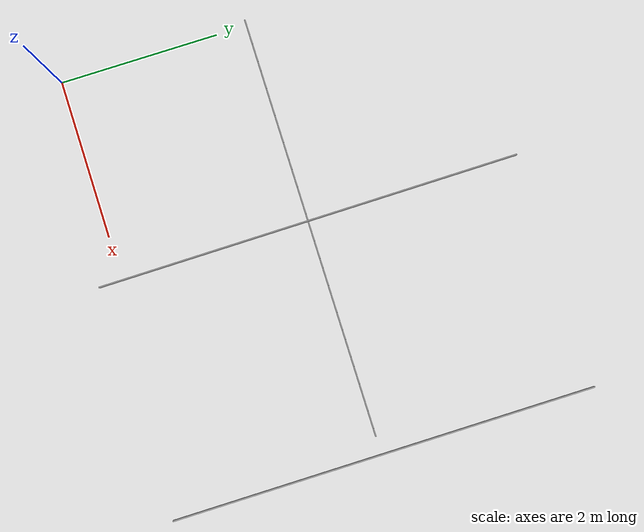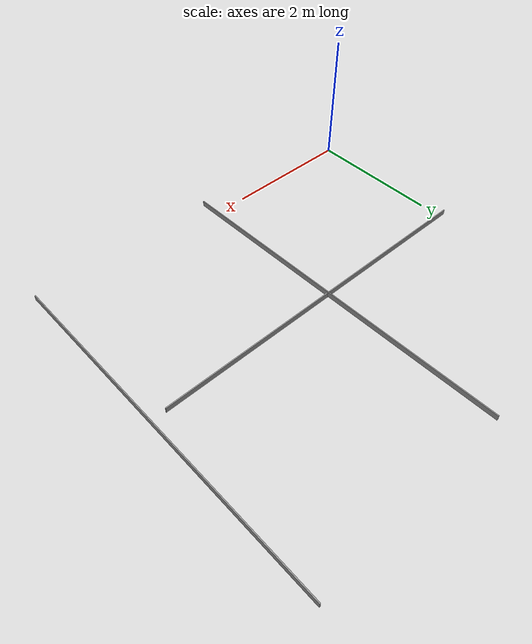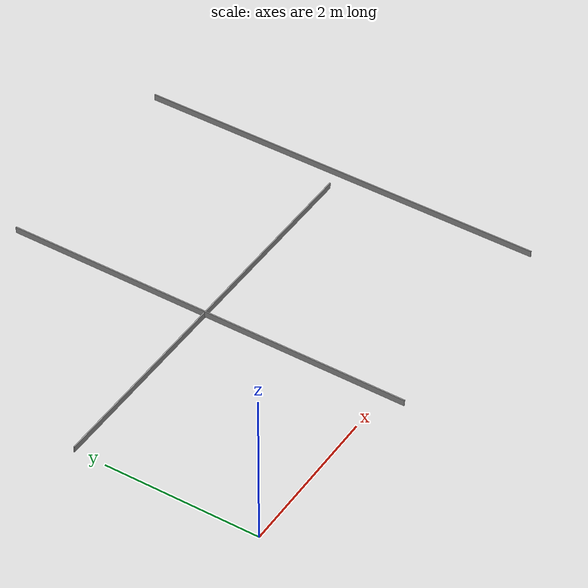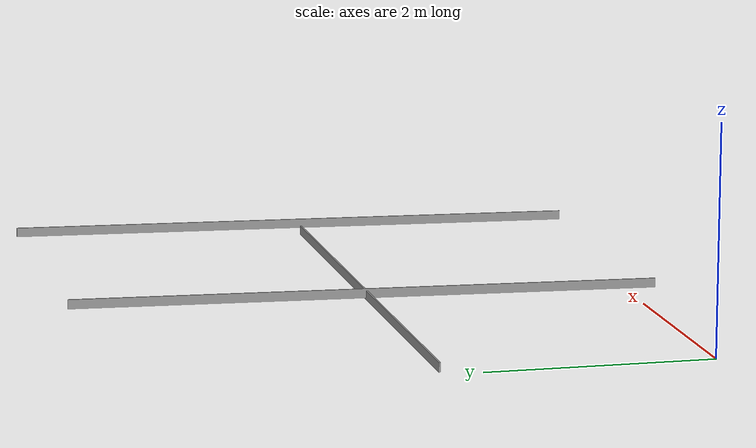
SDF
<sdf version="1.7">
 <world name="default">
  <model name="line">
   <link name="link">
    <inertial>
     <mass>1</mass>
     <inertia>
      <ixx>0.166667</ixx>
      <ixy>0</ixy>
      <ixz>0</ixz>
      <iyy>0.166667</iyy>
      <iyz>0</iyz>
      <izz>0.166667</izz>
     </inertia>
    </inertial>
    <visual name="visual">
     <geometry><box><size>5.32063 0.014816 0.083163</size></box></geometry>
     <material>
      <script><name>Gazebo/Grey</name><uri>file://media/materials/scripts/gazebo.material</uri></script>
      <shader type="pixel"><normal_map>__default__</normal_map></shader>
      <ambient>0.3 0.3 0.3 1</ambient>
      <diffuse>0.7 0.7 0.7 1</diffuse>
      <specular>0.01 0.01 0.01 1</specular>
      <emissive>0 0 0 1</emissive>
     </material>
    </visual>
    <collision name="collision">
     <geometry><box><size>5.32063 0.014816 0.083163</size></box></geometry>
     <surface>
      <friction>
       <ode><mu>1</mu><mu2>1</mu2><fdir1>0 0 0</fdir1><slip1>0</slip1><slip2>0</slip2></ode>
       <torsional>
        <coefficient>1</coefficient>
        <patch_radius>0</patch_radius>
        <surface_radius>0</surface_radius>
        <use_patch_radius>1</use_patch_radius>
        <ode><slip>0</slip></ode>
       </torsional>
      </friction>
      <bounce><restitution_coefficient>0</restitution_coefficient><threshold>1e+06</threshold></bounce>
      <contact>
       <collide_without_contact>0</collide_without_contact>
       <collide_without_contact_bitmask>1</collide_without_contact_bitmask>
       <collide_bitmask>1</collide_bitmask>
       <ode>
        <soft_cfm>0</soft_cfm>
        <soft_erp>0.2</soft_erp>
        <kp>1e+13</kp>
        <kd>1</kd>
        <max_vel>0.01</max_vel>
        <min_depth>0</min_depth>
       </ode>
       <bullet>
        <split_impulse>1</split_impulse>
        <split_impulse_penetration_threshold>-0.01</split_impulse_penetration_threshold>
        <soft_cfm>0</soft_cfm>
        <soft_erp>0.2</soft_erp>
        <kp>1e+13</kp>
        <kd>1</kd>
       </bullet>
      </contact>
     </surface>
    </collision>
   </link>
   <static>0</static>
   <pose>2.61456 2.37977 0.080832 0.017039 -9.6e-05 -3.5e-05</pose>
  </model>
  <model name="line_clone_clone">
   <link name="link">
    <inertial>
     <mass>1</mass>
     <inertia>
      <ixx>0.166667</ixx>
      <ixy>0</ixy>
      <ixz>0</ixz>
      <iyy>0.166667</iyy>
      <iyz>0</iyz>
      <izz>0.166667</izz>
     </inertia>
    </inertial>
    <visual name="visual">
     <geometry><box><size>5.32063 0.014816 0.083163</size></box></geometry>
     <material>
      <script><name>Gazebo/Grey</name><uri>file://media/materials/scripts/gazebo.material</uri></script>
      <shader type="pixel"><normal_map>__default__</normal_map></shader>
      <ambient>0.3 0.3 0.3 1</ambient>
      <diffuse>0.7 0.7 0.7 1</diffuse>
      <specular>0.01 0.01 0.01 1</specular>
      <emissive>0 0 0 1</emissive>
     </material>
    </visual>
    <collision name="collision">
     <geometry><box><size>5.32063 0.014816 0.083163</size></box></geometry>
     <surface>
      <friction>
       <ode><mu>1</mu><mu2>1</mu2><fdir1>0 0 0</fdir1><slip1>0</slip1><slip2>0</slip2></ode>
       <torsional>
        <coefficient>1</coefficient>
        <patch_radius>0</patch_radius>
        <surface_radius>0</surface_radius>
        <use_patch_radius>1</use_patch_radius>
        <ode><slip>0</slip></ode>
       </torsional>
      </friction>
      <bounce><restitution_coefficient>0</restitution_coefficient><threshold>1e+06</threshold></bounce>
      <contact>
       <collide_without_contact>0</collide_without_contact>
       <collide_without_contact_bitmask>1</collide_without_contact_bitmask>
       <collide_bitmask>1</collide_bitmask>
       <ode>
        <soft_cfm>0</soft_cfm>
        <soft_erp>0.2</soft_erp>
        <kp>1e+13</kp>
        <kd>1</kd>
        <max_vel>0.01</max_vel>
        <min_depth>0</min_depth>
       </ode>
       <bullet>
        <split_impulse>1</split_impulse>
        <split_impulse_penetration_threshold>-0.01</split_impulse_penetration_threshold>
        <soft_cfm>0</soft_cfm>
        <soft_erp>0.2</soft_erp>
        <kp>1e+13</kp>
        <kd>1</kd>
       </bullet>
      </contact>
     </surface>
    </collision>
   </link>
   <static>0</static>
   <pose>5.50275 2.40964 0.097705 0.000158 0.017039 -1.5672</pose>
  </model>
  <model name="line_clone_clone_clone">
   <link name="link">
    <inertial>
     <mass>1</mass>
     <inertia>
      <ixx>0.166667</ixx>
      <ixy>0</ixy>
      <ixz>0</ixz>
      <iyy>0.166667</iyy>
      <iyz>0</iyz>
      <izz>0.166667</izz>
     </inertia>
    </inertial>
    <visual name="visual">
     <geometry><box><size>5.32063 0.014816 0.083163</size></box></geometry>
     <material>
      <script><name>Gazebo/Grey</name><uri>file://media/materials/scripts/gazebo.material</uri></script>
      <shader type="pixel"><normal_map>__default__</normal_map></shader>
      <ambient>0.3 0.3 0.3 1</ambient>
      <diffuse>0.7 0.7 0.7 1</diffuse>
      <specular>0.01 0.01 0.01 1</specular>
      <emissive>0 0 0 1</emissive>
     </material>
    </visual>
    <collision name="collision">
     <geometry><box><size>5.32063 0.014816 0.083163</size></box></geometry>
     <surface>
      <friction>
       <ode><mu>1</mu><mu2>1</mu2><fdir1>0 0 0</fdir1><slip1>0</slip1><slip2>0</slip2></ode>
       <torsional>
        <coefficient>1</coefficient>
        <patch_radius>0</patch_radius>
        <surface_radius>0</surface_radius>
        <use_patch_radius>1</use_patch_radius>
        <ode><slip>0</slip></ode>
       </torsional>
      </friction>
      <bounce><restitution_coefficient>0</restitution_coefficient><threshold>1e+06</threshold></bounce>
      <contact>
       <collide_without_contact>0</collide_without_contact>
       <collide_without_contact_bitmask>1</collide_without_contact_bitmask>
       <collide_bitmask>1</collide_bitmask>
       <ode>
        <soft_cfm>0</soft_cfm>
        <soft_erp>0.2</soft_erp>
        <kp>1e+13</kp>
        <kd>1</kd>
        <max_vel>0.01</max_vel>
        <min_depth>0</min_depth>
       </ode>
       <bullet>
        <split_impulse>1</split_impulse>
        <split_impulse_penetration_threshold>-0.01</split_impulse_penetration_threshold>
        <soft_cfm>0</soft_cfm>
        <soft_erp>0.2</soft_erp>
        <kp>1e+13</kp>
        <kd>1</kd>
       </bullet>
      </contact>
     </surface>
    </collision>
   </link>
   <static>0</static>
   <pose>2.54553 2.37769 0.09773 0.000158 0.017039 -1.5672</pose>
  </model>
 </world>
</sdf>
